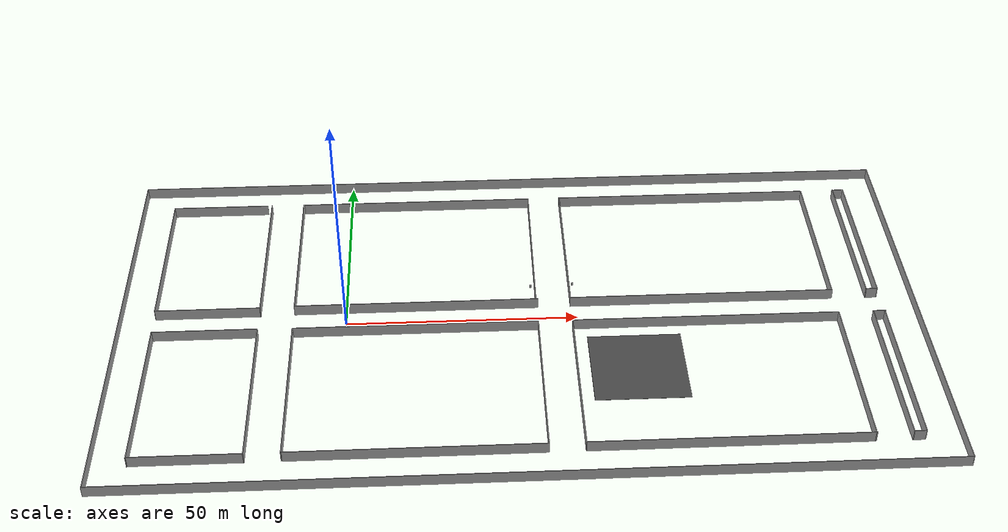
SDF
<sdf version="1.7">
 <world name="small_city_tracks">
  <plugin name="gazebo_ros_state" filename="libgazebo_ros_state.so"><update_rate>10.0</update_rate></plugin>
  <scene>
   <grid>0</grid>
   <origin_visual>0</origin_visual>
   <ambient>0.85 0.85 0.85 1</ambient>
   <sky><clouds><speed>12</speed></clouds></sky>
   <background>0.35 0.35 0.35 1</background>
   <shadows>1</shadows>
  </scene>
  <physics name="default_physics" default="0" type="ode">
   <max_step_size>0.001</max_step_size>
   <real_time_factor>1</real_time_factor>
   <real_time_update_rate>1000</real_time_update_rate>
  </physics>
  <light name="sun" type="directional">
   <pose>0 0 1000 0 -0 0</pose>
   <diffuse>0.8 0.8 0.8 1</diffuse>
   <specular>0.5 0.5 0.5 1</specular>
   <attenuation>
    <range>1000</range>
    <constant>0.9</constant>
    <linear>0.01</linear>
    <quadratic>0.001</quadratic>
   </attenuation>
   <direction>-0.5 0.1 -0.4</direction>
   <spot><inner_angle>0</inner_angle><outer_angle>0</outer_angle><falloff>0</falloff></spot>
  </light>
  <model name="ground_plane">
   <static>1</static>
   <link name="link">
    <inertial>
     <mass>1</mass>
     <inertia>
      <ixx>0.166667</ixx>
      <ixy>0</ixy>
      <ixz>0</ixz>
      <iyy>0.166667</iyy>
      <iyz>0</iyz>
      <izz>0.166667</izz>
     </inertia>
    </inertial>
    <collision name="collision">
     <geometry><plane><normal>0 0 1</normal><size>100 100</size></plane></geometry>
     <surface>
      <friction>
       <ode><mu>1</mu><mu2>1</mu2><fdir1>0 0 0</fdir1><slip1>0</slip1><slip2>0</slip2></ode>
       <torsional>
        <coefficient>1</coefficient>
        <patch_radius>0</patch_radius>
        <surface_radius>0</surface_radius>
        <use_patch_radius>1</use_patch_radius>
        <ode><slip>0</slip></ode>
       </torsional>
      </friction>
      <bounce><restitution_coefficient>0</restitution_coefficient><threshold>1e+06</threshold></bounce>
      <contact>
       <collide_without_contact>0</collide_without_contact>
       <collide_without_contact_bitmask>1</collide_without_contact_bitmask>
       <collide_bitmask>1</collide_bitmask>
       <ode>
        <soft_cfm>0</soft_cfm>
        <soft_erp>0.2</soft_erp>
        <kp>1e+13</kp>
        <kd>1</kd>
        <max_vel>0.01</max_vel>
        <min_depth>0</min_depth>
       </ode>
       <bullet>
        <split_impulse>1</split_impulse>
        <split_impulse_penetration_threshold>-0.01</split_impulse_penetration_threshold>
        <soft_cfm>0</soft_cfm>
        <soft_erp>0.2</soft_erp>
        <kp>1e+13</kp>
        <kd>1</kd>
       </bullet>
      </contact>
     </surface>
    </collision>
   </link>
  </model>
  <model name="asphalt_plane_74">
   <static>1</static>
   <pose>61.581 -16.664 0 0 -0 0</pose>
   <link name="link">
    <visual name="visual">
     <geometry><box><size>20 20 0.05</size></box></geometry>
     <material>
      <script>
       <uri>model://asphalt_plane/materials/scripts</uri>
       <uri>model://asphalt_plane/materials/textures</uri>
       <name>vrc/asphalt</name>
      </script>
     </material>
    </visual>
   </link>
  </model>
  <gravity>0 0 -9.8</gravity>
  <magnetic_field>6e-06 2.3e-05 -4.2e-05</magnetic_field>
  <atmosphere type="adiabatic"/>
  <spherical_coordinates>
   <surface_model>EARTH_WGS84</surface_model>
   <latitude_deg>0</latitude_deg>
   <longitude_deg>0</longitude_deg>
   <elevation>0</elevation>
   <heading_deg>0</heading_deg>
  </spherical_coordinates>
  <model name="small_city_tracks">
   <pose>37.5388 0.213089 0 0 -0 0</pose>
   <link name="Wall_1">
    <collision name="Wall_1_Collision">
     <geometry><box><size>22.3923 0.15 2.5</size></box></geometry>
     <pose>0 0 1.25 0 -0 0</pose>
     <surface><contact><collide_without_contact>1</collide_without_contact></contact></surface>
    </collision>
    <visual name="Wall_1_Visual">
     <pose>0 0 1.25 0 -0 0</pose>
     <geometry><box><size>22.3923 0.15 2.5</size></box></geometry>
     <material>
      <script><uri>file://media/materials/scripts/gazebo.material</uri><name>Gazebo/Grey</name></script>
      <diffuse>1 1 1 0</diffuse>
      <ambient>1 1 1 1</ambient>
     </material>
     <meta><layer>0</layer></meta>
    </visual>
    <pose>-67.5445 -3.7636 0 0 -0 3.14159</pose>
   </link>
   <link name="Wall_11">
    <collision name="Wall_11_Collision">
     <geometry><box><size>37.7906 0.15 2.5</size></box></geometry>
     <pose>0 0 1.25 0 -0 0</pose>
     <surface><contact><collide_without_contact>1</collide_without_contact></contact></surface>
    </collision>
    <visual name="Wall_11_Visual">
     <pose>0 0 1.25 0 -0 0</pose>
     <geometry><box><size>37.7906 0.15 2.5</size></box></geometry>
     <material>
      <script><uri>file://media/materials/scripts/gazebo.material</uri><name>Gazebo/Grey</name></script>
      <ambient>1 1 1 1</ambient>
      <diffuse>1 1 1 0</diffuse>
     </material>
     <meta><layer>0</layer></meta>
    </visual>
    <pose>-56.223 -22.5838 0 0 -0 -1.56772</pose>
   </link>
   <link name="Wall_13">
    <collision name="Wall_13_Collision">
     <geometry><box><size>172.5 0.15 2.5</size></box></geometry>
     <pose>0 0 1.25 0 -0 0</pose>
     <surface><contact><collide_without_contact>1</collide_without_contact></contact></surface>
    </collision>
    <visual name="Wall_13_Visual">
     <pose>0 0 1.25 0 -0 0</pose>
     <geometry><box><size>172.5 0.15 2.5</size></box></geometry>
     <material>
      <script><uri>file://media/materials/scripts/gazebo.material</uri><name>Gazebo/Grey</name></script>
      <ambient>1 1 1 1</ambient>
      <diffuse>1 1 1 0</diffuse>
     </material>
     <meta><layer>0</layer></meta>
    </visual>
    <pose>-0.028448 -49.05 0 0 -0 0</pose>
   </link>
   <link name="Wall_18">
    <collision name="Wall_18_Collision">
     <geometry><box><size>98.25 0.15 2.5</size></box></geometry>
     <pose>0 0 1.25 0 -0 0</pose>
     <surface><contact><collide_without_contact>1</collide_without_contact></contact></surface>
    </collision>
    <visual name="Wall_18_Visual">
     <pose>0 0 1.25 0 -0 0</pose>
     <geometry><box><size>98.25 0.15 2.5</size></box></geometry>
     <material>
      <script><uri>file://media/materials/scripts/gazebo.material</uri><name>Gazebo/Grey</name></script>
      <ambient>1 1 1 1</ambient>
      <diffuse>1 1 1 0</diffuse>
     </material>
     <meta><layer>0</layer></meta>
    </visual>
    <pose>86.1466 2e-06 0 0 -0 1.5708</pose>
   </link>
   <link name="Wall_20">
    <collision name="Wall_20_Collision">
     <geometry><box><size>172.5 0.15 2.5</size></box></geometry>
     <pose>0 0 1.25 0 -0 0</pose>
     <surface><contact><collide_without_contact>1</collide_without_contact></contact></surface>
    </collision>
    <visual name="Wall_20_Visual">
     <pose>0 0 1.25 0 -0 0</pose>
     <geometry><box><size>172.5 0.15 2.5</size></box></geometry>
     <material>
      <script><uri>file://media/materials/scripts/gazebo.material</uri><name>Gazebo/Grey</name></script>
      <ambient>1 1 1 1</ambient>
      <diffuse>1 1 1 0</diffuse>
     </material>
     <meta><layer>0</layer></meta>
    </visual>
    <pose>0.028448 49.0328 0 0 -0 3.14159</pose>
   </link>
   <link name="Wall_22">
    <collision name="Wall_22_Collision">
     <geometry><box><size>98 0.15 2.5</size></box></geometry>
     <pose>0 0 1.25 0 -0 0</pose>
     <surface><contact><collide_without_contact>1</collide_without_contact></contact></surface>
    </collision>
    <visual name="Wall_22_Visual">
     <pose>0 0 1.25 0 -0 0</pose>
     <geometry><box><size>98 0.15 2.5</size></box></geometry>
     <material>
      <script><uri>file://media/materials/scripts/gazebo.material</uri><name>Gazebo/Grey</name></script>
      <ambient>1 1 1 1</ambient>
      <diffuse>1 1 1 0</diffuse>
     </material>
     <meta><layer>0</layer></meta>
    </visual>
    <pose>-86.1466 0.107784 0 0 -0 -1.5708</pose>
   </link>
   <link name="Wall_24">
    <collision name="Wall_24_Collision">
     <geometry><box><size>37.5 0.15 2.5</size></box></geometry>
     <pose>0 0 1.25 0 -0 0</pose>
     <surface><contact><collide_without_contact>1</collide_without_contact></contact></surface>
    </collision>
    <visual name="Wall_24_Visual">
     <pose>0 0 1.25 0 -0 0</pose>
     <geometry><box><size>37.5 0.15 2.5</size></box></geometry>
     <material>
      <script><uri>file://media/materials/scripts/gazebo.material</uri><name>Gazebo/Grey</name></script>
      <ambient>1 1 1 1</ambient>
      <diffuse>1 1 1 0</diffuse>
     </material>
     <meta><layer>0</layer></meta>
    </visual>
    <pose>-78.8482 21.9874 0 0 -0 -1.5708</pose>
   </link>
   <link name="Wall_26">
    <collision name="Wall_26_Collision">
     <geometry><box><size>22.75 0.15 2.5</size></box></geometry>
     <pose>0 0 1.25 0 -0 0</pose>
     <surface><contact><collide_without_contact>1</collide_without_contact></contact></surface>
    </collision>
    <visual name="Wall_26_Visual">
     <pose>0 0 1.25 0 -0 0</pose>
     <geometry><box><size>22.75 0.15 2.5</size></box></geometry>
     <material>
      <script><uri>file://media/materials/scripts/gazebo.material</uri><name>Gazebo/Grey</name></script>
      <ambient>1 1 1 1</ambient>
      <diffuse>1 1 1 0</diffuse>
     </material>
     <meta><layer>0</layer></meta>
    </visual>
    <pose>-67.5482 3.31241 0 0 -0 0</pose>
   </link>
   <link name="Wall_28">
    <collision name="Wall_28_Collision">
     <geometry><box><size>38 0.15 2.5</size></box></geometry>
     <pose>0 0 1.25 0 -0 0</pose>
     <surface><contact><collide_without_contact>1</collide_without_contact></contact></surface>
    </collision>
    <visual name="Wall_28_Visual">
     <pose>0 0 1.25 0 -0 0</pose>
     <geometry><box><size>38 0.15 2.5</size></box></geometry>
     <material>
      <script><uri>file://media/materials/scripts/gazebo.material</uri><name>Gazebo/Grey</name></script>
      <ambient>1 1 1 1</ambient>
      <diffuse>1 1 1 0</diffuse>
     </material>
     <meta><layer>0</layer></meta>
    </visual>
    <pose>-56.2482 22.2374 0 0 -0 1.5708</pose>
   </link>
   <link name="Wall_30">
    <collision name="Wall_30_Collision">
     <geometry><box><size>21.75 0.15 2.5</size></box></geometry>
     <pose>0 0 1.25 0 -0 0</pose>
     <surface><contact><collide_without_contact>1</collide_without_contact></contact></surface>
    </collision>
    <visual name="Wall_30_Visual">
     <pose>0 0 1.25 0 -0 0</pose>
     <geometry><box><size>21.75 0.15 2.5</size></box></geometry>
     <material>
      <script><uri>file://media/materials/scripts/gazebo.material</uri><name>Gazebo/Grey</name></script>
      <ambient>1 1 1 1</ambient>
      <diffuse>1 1 1 0</diffuse>
     </material>
     <meta><layer>0</layer></meta>
    </visual>
    <pose>-68.058 41.0148 0 0 -0 0</pose>
   </link>
   <link name="Wall_33">
    <collision name="Wall_33_Collision">
     <geometry><box><size>37.5 0.15 2.5</size></box></geometry>
     <pose>0 0 1.25 0 -0 0</pose>
     <surface><contact><collide_without_contact>1</collide_without_contact></contact></surface>
    </collision>
    <visual name="Wall_33_Visual">
     <pose>0 0 1.25 0 -0 0</pose>
     <geometry><box><size>37.5 0.15 2.5</size></box></geometry>
     <material>
      <script><uri>file://media/materials/scripts/gazebo.material</uri><name>Gazebo/Grey</name></script>
      <ambient>1 1 1 1</ambient>
      <diffuse>1 1 1 0</diffuse>
     </material>
     <meta><layer>0</layer></meta>
    </visual>
    <pose>-48.8172 -22.7213 0 0 -0 -1.5708</pose>
   </link>
   <link name="Wall_35">
    <collision name="Wall_35_Collision">
     <geometry><box><size>52.5 0.15 2.5</size></box></geometry>
     <pose>0 0 1.25 0 -0 0</pose>
     <surface><contact><collide_without_contact>1</collide_without_contact></contact></surface>
    </collision>
    <visual name="Wall_35_Visual">
     <pose>0 0 1.25 0 -0 0</pose>
     <geometry><box><size>52.5 0.15 2.5</size></box></geometry>
     <material>
      <script><uri>file://media/materials/scripts/gazebo.material</uri><name>Gazebo/Grey</name></script>
      <ambient>1 1 1 1</ambient>
      <diffuse>1 1 1 0</diffuse>
     </material>
     <meta><layer>0</layer></meta>
    </visual>
    <pose>-22.4299 -41.3918 0 0 -0 0</pose>
   </link>
   <link name="Wall_38">
    <collision name="Wall_38_Collision">
     <geometry><box><size>37.5 0.15 2.5</size></box></geometry>
     <pose>0 0 1.25 0 -0 0</pose>
     <surface><contact><collide_without_contact>1</collide_without_contact></contact></surface>
    </collision>
    <visual name="Wall_38_Visual">
     <pose>0 0 1.25 0 -0 0</pose>
     <geometry><box><size>37.5 0.15 2.5</size></box></geometry>
     <material>
      <script><uri>file://media/materials/scripts/gazebo.material</uri><name>Gazebo/Grey</name></script>
      <ambient>1 1 1 1</ambient>
      <diffuse>1 1 1 0</diffuse>
     </material>
     <meta><layer>0</layer></meta>
    </visual>
    <pose>3.73024 -22.574 0 0 -0 1.5708</pose>
   </link>
   <link name="Wall_4">
    <collision name="Wall_4_Collision">
     <geometry><box><size>37.927 0.15 2.5</size></box></geometry>
     <pose>0 0 1.25 0 -0 0</pose>
     <surface><contact><collide_without_contact>1</collide_without_contact></contact></surface>
    </collision>
    <visual name="Wall_4_Visual">
     <pose>0 0 1.25 0 -0 0</pose>
     <geometry><box><size>37.927 0.15 2.5</size></box></geometry>
     <material>
      <script><uri>file://media/materials/scripts/gazebo.material</uri><name>Gazebo/Grey</name></script>
      <ambient>1 1 1 1</ambient>
      <diffuse>1 1 1 0</diffuse>
     </material>
     <meta><layer>0</layer></meta>
    </visual>
    <pose>-78.7733 -22.6521 0 0 -0 -1.5765</pose>
   </link>
   <link name="Wall_40">
    <collision name="Wall_40_Collision">
     <geometry><box><size>52.5 0.15 2.5</size></box></geometry>
     <pose>0 0 1.25 0 -0 0</pose>
     <surface><contact><collide_without_contact>1</collide_without_contact></contact></surface>
    </collision>
    <visual name="Wall_40_Visual">
     <pose>0 0 1.25 0 -0 0</pose>
     <geometry><box><size>52.5 0.15 2.5</size></box></geometry>
     <material>
      <script><uri>file://media/materials/scripts/gazebo.material</uri><name>Gazebo/Grey</name></script>
      <ambient>1 1 1 1</ambient>
      <diffuse>1 1 1 0</diffuse>
     </material>
     <meta><layer>0</layer></meta>
    </visual>
    <pose>-22.4448 -3.89897 0 0 -0 3.14159</pose>
   </link>
   <link name="Wall_42">
    <collision name="Wall_42_Collision">
     <geometry><box><size>37.5 0.15 2.5</size></box></geometry>
     <pose>0 0 1.25 0 -0 0</pose>
     <surface><contact><collide_without_contact>1</collide_without_contact></contact></surface>
    </collision>
    <visual name="Wall_42_Visual">
     <pose>0 0 1.25 0 -0 0</pose>
     <geometry><box><size>37.5 0.15 2.5</size></box></geometry>
     <material>
      <script><uri>file://media/materials/scripts/gazebo.material</uri><name>Gazebo/Grey</name></script>
      <ambient>1 1 1 1</ambient>
      <diffuse>1 1 1 0</diffuse>
     </material>
     <meta><layer>0</layer></meta>
    </visual>
    <pose>-48.832 22.2484 0 0 -0 -1.5708</pose>
   </link>
   <link name="Wall_44">
    <collision name="Wall_44_Collision">
     <geometry><box><size>53 0.15 2.5</size></box></geometry>
     <pose>0 0 1.25 0 -0 0</pose>
     <surface><contact><collide_without_contact>1</collide_without_contact></contact></surface>
    </collision>
    <visual name="Wall_44_Visual">
     <pose>0 0 1.25 0 -0 0</pose>
     <geometry><box><size>53 0.15 2.5</size></box></geometry>
     <material>
      <script><uri>file://media/materials/scripts/gazebo.material</uri><name>Gazebo/Grey</name></script>
      <ambient>1 1 1 1</ambient>
      <diffuse>1 1 1 0</diffuse>
     </material>
     <meta><layer>0</layer></meta>
    </visual>
    <pose>-22.407 3.57336 0 0 -0 0</pose>
   </link>
   <link name="Wall_46">
    <collision name="Wall_46_Collision">
     <geometry><box><size>37.3101 0.15 2.5</size></box></geometry>
     <pose>0 0 1.25 0 -0 0</pose>
     <surface><contact><collide_without_contact>1</collide_without_contact></contact></surface>
    </collision>
    <visual name="Wall_46_Visual">
     <pose>0 0 1.25 0 -0 0</pose>
     <geometry><box><size>37.3101 0.15 2.5</size></box></geometry>
     <material>
      <script><uri>file://media/materials/scripts/gazebo.material</uri><name>Gazebo/Grey</name></script>
      <ambient>1 1 1 1</ambient>
      <diffuse>1 1 1 0</diffuse>
     </material>
     <meta><layer>0</layer></meta>
    </visual>
    <pose>3.72448 22.3485 0 0 -0 1.56567</pose>
   </link>
   <link name="Wall_48">
    <collision name="Wall_48_Collision">
     <geometry><box><size>52.5 0.15 2.5</size></box></geometry>
     <pose>0 0 1.25 0 -0 0</pose>
     <surface><contact><collide_without_contact>1</collide_without_contact></contact></surface>
    </collision>
    <visual name="Wall_48_Visual">
     <pose>0 0 1.25 0 -0 0</pose>
     <geometry><box><size>52.5 0.15 2.5</size></box></geometry>
     <material>
      <script><uri>file://media/materials/scripts/gazebo.material</uri><name>Gazebo/Grey</name></script>
      <ambient>1 1 1 1</ambient>
      <diffuse>1 1 1 0</diffuse>
     </material>
     <meta><layer>0</layer></meta>
    </visual>
    <pose>-22.3553 40.9284 0 0 -0 3.14159</pose>
   </link>
   <link name="Wall_50">
    <collision name="Wall_50_Collision">
     <geometry><box><size>37.5 0.15 2.5</size></box></geometry>
     <pose>0 0 1.25 0 -0 0</pose>
     <surface><contact><collide_without_contact>1</collide_without_contact></contact></surface>
    </collision>
    <visual name="Wall_50_Visual">
     <pose>0 0 1.25 0 -0 0</pose>
     <geometry><box><size>37.5 0.15 2.5</size></box></geometry>
     <material>
      <script><uri>file://media/materials/scripts/gazebo.material</uri><name>Gazebo/Grey</name></script>
      <ambient>1 1 1 1</ambient>
      <diffuse>1 1 1 0</diffuse>
     </material>
     <meta><layer>0</layer></meta>
    </visual>
    <pose>11.121 -22.6822 0 0 -0 -1.5708</pose>
   </link>
   <link name="Wall_52">
    <collision name="Wall_52_Collision">
     <geometry><box><size>57.75 0.15 2.5</size></box></geometry>
     <pose>0 0 1.25 0 -0 0</pose>
     <surface><contact><collide_without_contact>1</collide_without_contact></contact></surface>
    </collision>
    <visual name="Wall_52_Visual">
     <pose>0 0 1.25 0 -0 0</pose>
     <geometry><box><size>57.75 0.15 2.5</size></box></geometry>
     <material>
      <script><uri>file://media/materials/scripts/gazebo.material</uri><name>Gazebo/Grey</name></script>
      <ambient>1 1 1 1</ambient>
      <diffuse>1 1 1 0</diffuse>
     </material>
     <meta><layer>0</layer></meta>
    </visual>
    <pose>40.016 -41.4057 0 0 -0 0</pose>
   </link>
   <link name="Wall_54">
    <collision name="Wall_54_Collision">
     <geometry><box><size>37.5 0.15 2.5</size></box></geometry>
     <pose>0 0 1.25 0 -0 0</pose>
     <surface><contact><collide_without_contact>1</collide_without_contact></contact></surface>
    </collision>
    <visual name="Wall_54_Visual">
     <pose>0 0 1.25 0 -0 0</pose>
     <geometry><box><size>37.5 0.15 2.5</size></box></geometry>
     <material>
      <script><uri>file://media/materials/scripts/gazebo.material</uri><name>Gazebo/Grey</name></script>
      <ambient>1 1 1 1</ambient>
      <diffuse>1 1 1 0</diffuse>
     </material>
     <meta><layer>0</layer></meta>
    </visual>
    <pose>68.6655 -22.7367 0 0 -0 1.5708</pose>
   </link>
   <link name="Wall_56">
    <collision name="Wall_56_Collision">
     <geometry><box><size>57.5 0.15 2.5</size></box></geometry>
     <pose>0 0 1.25 0 -0 0</pose>
     <surface><contact><collide_without_contact>1</collide_without_contact></contact></surface>
    </collision>
    <visual name="Wall_56_Visual">
     <pose>0 0 1.25 0 -0 0</pose>
     <geometry><box><size>57.5 0.15 2.5</size></box></geometry>
     <material>
      <script><uri>file://media/materials/scripts/gazebo.material</uri><name>Gazebo/Grey</name></script>
      <ambient>1 1 1 1</ambient>
      <diffuse>1 1 1 0</diffuse>
     </material>
     <meta><layer>0</layer></meta>
    </visual>
    <pose>39.8682 -4.03088 0 0 -0 3.14159</pose>
   </link>
   <link name="Wall_58">
    <collision name="Wall_58_Collision">
     <geometry><box><size>37.5 0.15 2.5</size></box></geometry>
     <pose>0 0 1.25 0 -0 0</pose>
     <surface><contact><collide_without_contact>1</collide_without_contact></contact></surface>
    </collision>
    <visual name="Wall_58_Visual">
     <pose>0 0 1.25 0 -0 0</pose>
     <geometry><box><size>37.5 0.15 2.5</size></box></geometry>
     <material>
      <script><uri>file://media/materials/scripts/gazebo.material</uri><name>Gazebo/Grey</name></script>
      <ambient>1 1 1 1</ambient>
      <diffuse>1 1 1 0</diffuse>
     </material>
     <meta><layer>0</layer></meta>
    </visual>
    <pose>11.1791 22.2892 0 0 -0 -1.5708</pose>
   </link>
   <link name="Wall_60">
    <collision name="Wall_60_Collision">
     <geometry><box><size>57.75 0.15 2.5</size></box></geometry>
     <pose>0 0 1.25 0 -0 0</pose>
     <surface><contact><collide_without_contact>1</collide_without_contact></contact></surface>
    </collision>
    <visual name="Wall_60_Visual">
     <pose>0 0 1.25 0 -0 0</pose>
     <geometry><box><size>57.75 0.15 2.5</size></box></geometry>
     <material>
      <script><uri>file://media/materials/scripts/gazebo.material</uri><name>Gazebo/Grey</name></script>
      <ambient>1 1 1 1</ambient>
      <diffuse>1 1 1 0</diffuse>
     </material>
     <meta><layer>0</layer></meta>
    </visual>
    <pose>39.9791 3.61416 0 0 -0 0</pose>
   </link>
   <link name="Wall_62">
    <collision name="Wall_62_Collision">
     <geometry><box><size>37.25 0.15 2.5</size></box></geometry>
     <pose>0 0 1.25 0 -0 0</pose>
     <surface><contact><collide_without_contact>1</collide_without_contact></contact></surface>
    </collision>
    <visual name="Wall_62_Visual">
     <pose>0 0 1.25 0 -0 0</pose>
     <geometry><box><size>37.25 0.15 2.5</size></box></geometry>
     <material>
      <script><uri>file://media/materials/scripts/gazebo.material</uri><name>Gazebo/Grey</name></script>
      <ambient>1 1 1 1</ambient>
      <diffuse>1 1 1 0</diffuse>
     </material>
     <meta><layer>0</layer></meta>
    </visual>
    <pose>68.6691 22.3171 0 0 -0 1.5708</pose>
   </link>
   <link name="Wall_64">
    <collision name="Wall_64_Collision">
     <geometry><box><size>57.5 0.15 2.5</size></box></geometry>
     <pose>0 0 1.25 0 -0 0</pose>
     <surface><contact><collide_without_contact>1</collide_without_contact></contact></surface>
    </collision>
    <visual name="Wall_64_Visual">
     <pose>0 0 1.25 0 -0 0</pose>
     <geometry><box><size>57.5 0.15 2.5</size></box></geometry>
     <material>
      <script><uri>file://media/materials/scripts/gazebo.material</uri><name>Gazebo/Grey</name></script>
      <ambient>1 1 1 1</ambient>
      <diffuse>1 1 1 0</diffuse>
     </material>
     <meta><layer>0</layer></meta>
    </visual>
    <pose>39.7955 40.9564 0 0 -0 3.14159</pose>
   </link>
   <link name="Wall_66">
    <collision name="Wall_66_Collision">
     <geometry><box><size>2.5 0.15 2.5</size></box></geometry>
     <pose>0 0 1.25 0 -0 0</pose>
    </collision>
    <visual name="Wall_66_Visual">
     <pose>0 0 1.25 0 -0 0</pose>
     <geometry><box><size>2.5 0.15 2.5</size></box></geometry>
     <material>
      <script><uri>file://media/materials/scripts/gazebo.material</uri><name>Gazebo/Grey</name></script>
      <ambient>1 1 1 1</ambient>
      <diffuse>1 1 1 0</diffuse>
     </material>
     <meta><layer>0</layer></meta>
    </visual>
    <pose>77.3824 -41.3947 0 0 -0 0</pose>
   </link>
   <link name="Wall_69">
    <collision name="Wall_69_Collision">
     <geometry><box><size>37.5845 0.15 2.5</size></box></geometry>
     <pose>0 0 1.25 0 -0 0</pose>
     <surface><contact><collide_without_contact>1</collide_without_contact></contact></surface>
    </collision>
    <visual name="Wall_69_Visual">
     <pose>0 0 1.25 0 -0 0</pose>
     <geometry><box><size>37.5845 0.15 2.5</size></box></geometry>
     <material>
      <script><uri>file://media/materials/scripts/gazebo.material</uri><name>Gazebo/Grey</name></script>
      <ambient>1 1 1 1</ambient>
      <diffuse>1 1 1 0</diffuse>
     </material>
     <meta><layer>0</layer></meta>
    </visual>
    <pose>76.2035 -22.7394 0 0 -0 1.5708</pose>
   </link>
   <link name="Wall_7">
    <collision name="Wall_7_Collision">
     <geometry><box><size>22.6423 0.15 2.5</size></box></geometry>
     <pose>0 0 1.25 0 -0 0</pose>
     <surface><contact><collide_without_contact>1</collide_without_contact></contact></surface>
    </collision>
    <visual name="Wall_7_Visual">
     <pose>0 0 1.25 0 -0 0</pose>
     <geometry><box><size>22.6423 0.15 2.5</size></box></geometry>
     <material>
      <script><uri>file://media/materials/scripts/gazebo.material</uri><name>Gazebo/Grey</name></script>
      <ambient>1 1 1 1</ambient>
      <diffuse>1 1 1 0</diffuse>
     </material>
     <meta><layer>0</layer></meta>
    </visual>
    <pose>-67.5536 -41.404 0 0 -0 0</pose>
   </link>
   <link name="Wall_71">
    <collision name="Wall_71_Collision">
     <geometry><box><size>2.83106 0.15 2.5</size></box></geometry>
     <pose>0 0 1.25 0 -0 0</pose>
     <surface><contact><collide_without_contact>1</collide_without_contact></contact></surface>
    </collision>
    <visual name="Wall_71_Visual">
     <pose>0 0 1.25 0 -0 0</pose>
     <geometry><box><size>2.83106 0.15 2.5</size></box></geometry>
     <material>
      <script><uri>file://media/materials/scripts/gazebo.material</uri><name>Gazebo/Grey</name></script>
      <ambient>1 1 1 1</ambient>
      <diffuse>1 1 1 0</diffuse>
     </material>
     <meta><layer>0</layer></meta>
    </visual>
    <pose>77.544 -4.02213 0 0 -0 0</pose>
   </link>
   <link name="Wall_73">
    <collision name="Wall_73_Collision">
     <geometry><box><size>37.5 0.15 2.5</size></box></geometry>
     <pose>0 0 1.25 0 -0 0</pose>
     <surface><contact><collide_without_contact>1</collide_without_contact></contact></surface>
    </collision>
    <visual name="Wall_73_Visual">
     <pose>0 0 1.25 0 -0 0</pose>
     <geometry><box><size>37.5 0.15 2.5</size></box></geometry>
     <material>
      <script><uri>file://media/materials/scripts/gazebo.material</uri><name>Gazebo/Grey</name></script>
      <ambient>1 1 1 1</ambient>
      <diffuse>1 1 1 0</diffuse>
     </material>
     <meta><layer>0</layer></meta>
    </visual>
    <pose>78.719 -22.6971 0 0 -0 -1.5708</pose>
   </link>
   <link name="Wall_75">
    <collision name="Wall_75_Collision">
     <geometry><box><size>2.5 0.15 2.5</size></box></geometry>
     <pose>0 0 1.25 0 -0 0</pose>
     <surface><contact><collide_without_contact>1</collide_without_contact></contact></surface>
    </collision>
    <visual name="Wall_75_Visual">
     <pose>0 0 1.25 0 -0 0</pose>
     <geometry><box><size>2.5 0.15 2.5</size></box></geometry>
     <material>
      <script><uri>file://media/materials/scripts/gazebo.material</uri><name>Gazebo/Grey</name></script>
      <ambient>1 1 1 1</ambient>
      <diffuse>1 1 1 0</diffuse>
     </material>
     <meta><layer>0</layer></meta>
    </visual>
    <pose>77.4295 3.5693 0 0 -0 0</pose>
   </link>
   <link name="Wall_77">
    <collision name="Wall_77_Collision">
     <geometry><box><size>37.75 0.15 2.5</size></box></geometry>
     <pose>0 0 1.25 0 -0 0</pose>
     <surface><contact><collide_without_contact>1</collide_without_contact></contact></surface>
    </collision>
    <visual name="Wall_77_Visual">
     <pose>0 0 1.25 0 -0 0</pose>
     <geometry><box><size>37.75 0.15 2.5</size></box></geometry>
     <material>
      <script><uri>file://media/materials/scripts/gazebo.material</uri><name>Gazebo/Grey</name></script>
      <ambient>1 1 1 1</ambient>
      <diffuse>1 1 1 0</diffuse>
     </material>
     <meta><layer>0</layer></meta>
    </visual>
    <pose>76.2545 22.3693 0 0 -0 1.5708</pose>
   </link>
   <link name="Wall_79">
    <collision name="Wall_79_Collision">
     <geometry><box><size>2.25 0.15 2.5</size></box></geometry>
     <pose>0 0 1.25 0 -0 0</pose>
     <surface><contact><collide_without_contact>1</collide_without_contact></contact></surface>
    </collision>
    <visual name="Wall_79_Visual">
     <pose>0 0 1.25 0 -0 0</pose>
     <geometry><box><size>2.25 0.15 2.5</size></box></geometry>
     <material>
      <script><uri>file://media/materials/scripts/gazebo.material</uri><name>Gazebo/Grey</name></script>
      <ambient>1 1 1 1</ambient>
      <diffuse>1 1 1 0</diffuse>
     </material>
     <meta><layer>0</layer></meta>
    </visual>
    <pose>77.4385 40.9864 0 0 -0 0</pose>
   </link>
   <link name="Wall_83">
    <collision name="Wall_83_Collision">
     <geometry><box><size>37.5 0.15 2.5</size></box></geometry>
     <pose>0 0 1.25 0 -0 0</pose>
     <surface><contact><collide_without_contact>1</collide_without_contact></contact></surface>
    </collision>
    <visual name="Wall_83_Visual">
     <pose>0 0 1.25 0 -0 0</pose>
     <geometry><box><size>37.5 0.15 2.5</size></box></geometry>
     <material>
      <script><uri>file://media/materials/scripts/gazebo.material</uri><name>Gazebo/Grey</name></script>
      <ambient>1 1 1 1</ambient>
      <diffuse>1 1 1 0</diffuse>
     </material>
     <meta><layer>0</layer></meta>
    </visual>
    <pose>78.7059 22.2304 0 0 -0 -1.5708</pose>
   </link>
   <static>1</static>
  </model>
  <model name="Box_24x15W_clone">
   <link name="Wall">
    <pose>0 0 0.1985 0 -0 0</pose>
    <inertial>
     <mass>5</mass>
     <inertia><ixx>0.1022</ixx><iyy>0.2197</iyy><izz>0.1905</izz><ixy>0</ixy><ixz>0</ixz><iyz>0</iyz></inertia>
    </inertial>
    <collision name="Wall_Collision"><geometry><box><size>0.608 0.296 0.397</size></box></geometry></collision>
    <visual name="Wall_Visual">
     <geometry><box><size>0.608 0.296 0.397</size></box></geometry>
     <material>
      <script><uri>file://media/materials/scripts/gazebo.material</uri><name>Gazebo/Grey</name></script>
      <ambient>1 1 1 1</ambient>
     </material>
    </visual>
   </link>
   <static>1</static>
   <pose>49.8173 10.991 0.460965 3.14159 -1.56971 3.14159</pose>
  </model>
  <model name="Box_24x15W_clone_clone">
   <link name="Wall">
    <pose>0 0 0.1985 0 -0 0</pose>
    <inertial>
     <mass>5</mass>
     <inertia><ixx>0.1022</ixx><iyy>0.2197</iyy><izz>0.1905</izz><ixy>0</ixy><ixz>0</ixz><iyz>0</iyz></inertia>
    </inertial>
    <collision name="Wall_Collision"><geometry><box><size>0.608 0.296 0.397</size></box></geometry></collision>
    <visual name="Wall_Visual">
     <geometry><box><size>0.608 0.296 0.397</size></box></geometry>
     <material>
      <script><uri>file://media/materials/scripts/gazebo.material</uri><name>Gazebo/Grey</name></script>
      <ambient>1 1 1 1</ambient>
     </material>
    </visual>
   </link>
   <static>1</static>
   <pose>40.4865 10.5927 0.460965 3.14159 -1.56971 3.14159</pose>
  </model>
 </world>
</sdf>
